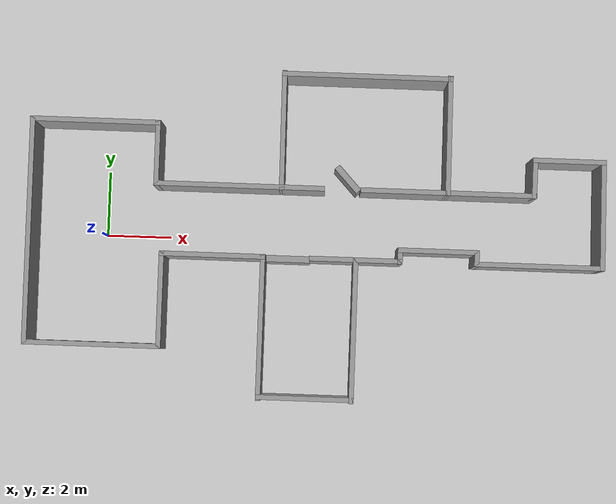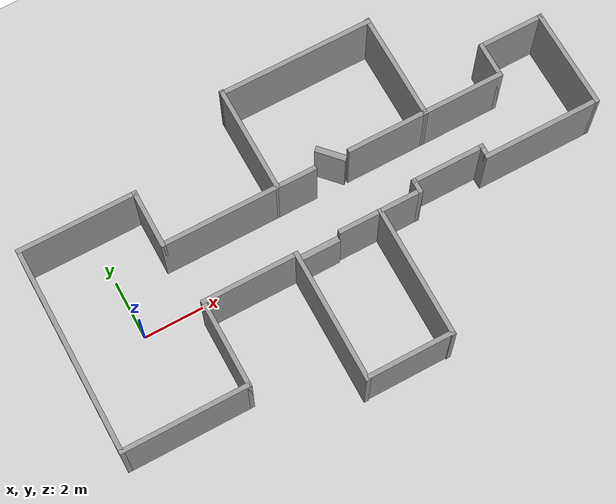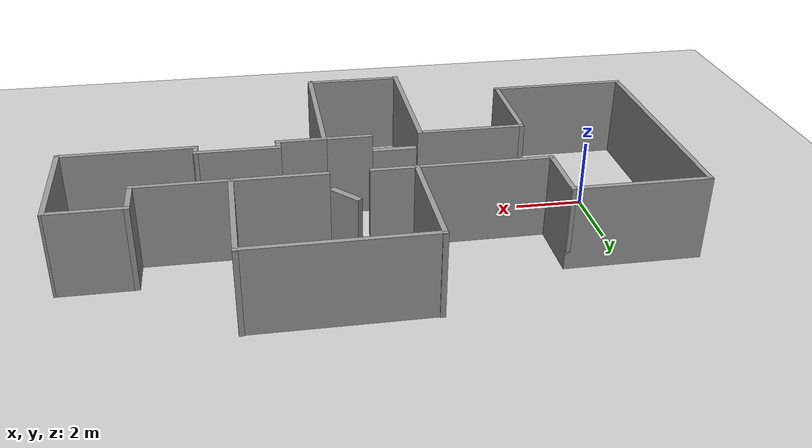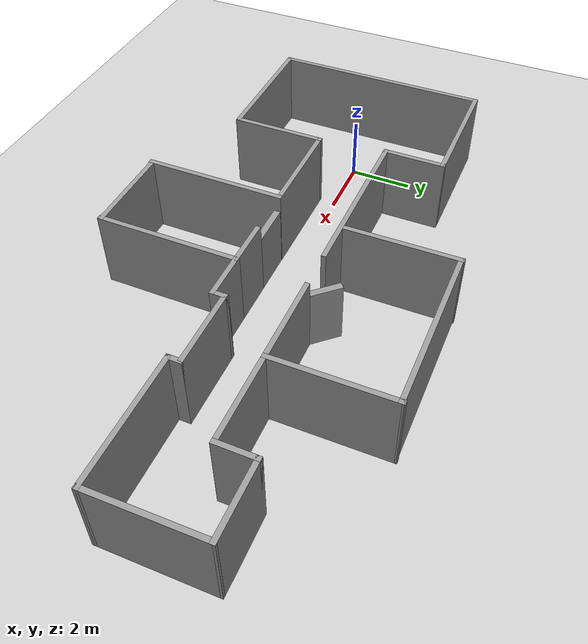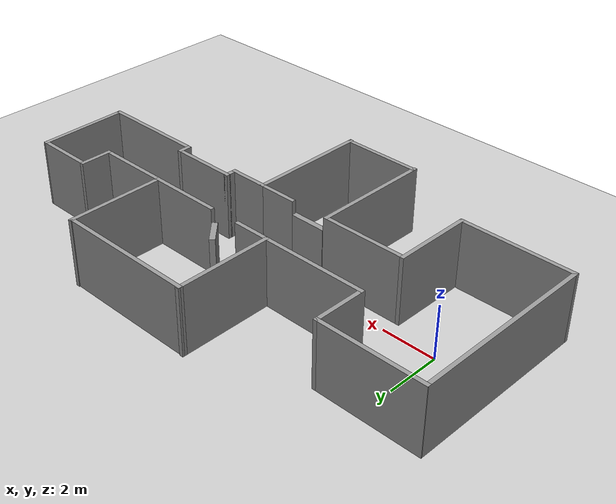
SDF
<sdf version="1.7">
 <world name="default">
  <light name="sun" type="directional">
   <pose>0 0 10 0 -0 0</pose>
   <diffuse>0.8 0.8 0.8 1</diffuse>
   <specular>0.2 0.2 0.2 1</specular>
   <attenuation>
    <range>1000</range>
    <constant>0.9</constant>
    <linear>0.01</linear>
    <quadratic>0.001</quadratic>
   </attenuation>
   <direction>-0.5 0.1 -0.9</direction>
   <spot><inner_angle>0</inner_angle><outer_angle>0</outer_angle><falloff>0</falloff></spot>
  </light>
  <model name="ground_plane">
   <static>1</static>
   <link name="link">
    <collision name="collision">
     <geometry><plane><normal>0 0 1</normal><size>100 100</size></plane></geometry>
     <surface>
      <contact><collide_bitmask>65535</collide_bitmask></contact>
      <friction><ode><mu>100</mu><mu2>50</mu2></ode></friction>
     </surface>
    </collision>
    <visual name="visual">
     <cast_shadows>0</cast_shadows>
     <geometry><plane><normal>0 0 1</normal><size>100 100</size></plane></geometry>
     <material>
      <script><uri>file://media/materials/scripts/gazebo.material</uri><name>Gazebo/Grey</name></script>
     </material>
    </visual>
   </link>
  </model>
  <gravity>0 0 -9.8</gravity>
  <magnetic_field>6e-06 2.3e-05 -4.2e-05</magnetic_field>
  <atmosphere type="adiabatic"/>
  <physics type="ode">
   <max_step_size>0.001</max_step_size>
   <real_time_factor>1</real_time_factor>
   <real_time_update_rate>1000</real_time_update_rate>
  </physics>
  <scene><ambient>0.4 0.4 0.4 1</ambient><background>0.7 0.7 0.7 1</background><shadows>1</shadows></scene>
  <spherical_coordinates>
   <surface_model>EARTH_WGS84</surface_model>
   <latitude_deg>0</latitude_deg>
   <longitude_deg>0</longitude_deg>
   <elevation>0</elevation>
   <heading_deg>0</heading_deg>
  </spherical_coordinates>
  <model name="corridorww">
   <pose>6.57593 0.1021 0 0 -0 0</pose>
   <link name="Door_1">
    <collision name="Door_1_Collision">
     <geometry><box><size>1.0064 0.2 2</size></box></geometry>
     <pose>0 0 1 0 -0 0</pose>
    </collision>
    <visual name="Door_1_Visual">
     <pose>0 0 1 0 -0 0</pose>
     <geometry><box><size>1.0064 0.2 2</size></box></geometry>
     <material>
      <script><uri>file://media/materials/scripts/gazebo.material</uri><name>Gazebo/Grey</name></script>
     </material>
    </visual>
    <pose>0.927988 1.81994 0 0 0 -0.824793</pose>
   </link>
   <link name="Door_2">
    <collision name="Door_2_Collision">
     <geometry><box><size>1.33642 0.2 2</size></box></geometry>
     <pose>0 0 1 0 -0 0</pose>
    </collision>
    <visual name="Door_2_Visual">
     <pose>0 0 1 0 -0 0</pose>
     <geometry><box><size>1.33642 0.2 2</size></box></geometry>
     <material>
      <script><uri>file://media/materials/scripts/gazebo.material</uri><name>Gazebo/Grey</name></script>
     </material>
    </visual>
    <pose>-0.835214 -0.707081 0 0 -0 0</pose>
   </link>
   <link name="Wall_1">
    <collision name="Wall_1_Collision">
     <geometry><box><size>4.25 0.15 2.5</size></box></geometry>
     <pose>0 0 1.25 0 -0 0</pose>
    </collision>
    <visual name="Wall_1_Visual">
     <pose>0 0 1.25 0 -0 0</pose>
     <geometry><box><size>4.25 0.15 2.5</size></box></geometry>
     <material>
      <script><uri>file://media/materials/scripts/gazebo.material</uri><name>Gazebo/Grey</name></script>
      <ambient>1 1 1 1</ambient>
     </material>
     <meta><layer>0</layer></meta>
    </visual>
    <pose>-6.75057 -3.52902 0 0 -0 0</pose>
   </link>
   <link name="Wall_10">
    <collision name="Wall_10_Collision">
     <geometry><box><size>4.46833 0.15 2.5</size></box></geometry>
     <pose>0 0 1.25 0 -0 0</pose>
    </collision>
    <visual name="Wall_10_Visual">
     <pose>0 0 1.25 0 -0 0</pose>
     <geometry><box><size>4.46833 0.15 2.5</size></box></geometry>
     <material>
      <script><uri>file://media/materials/scripts/gazebo.material</uri><name>Gazebo/Grey</name></script>
      <ambient>1 1 1 1</ambient>
     </material>
     <meta><layer>0</layer></meta>
    </visual>
    <pose>-1.60057 -2.83819 0 0 -0 -1.5708</pose>
   </link>
   <link name="Wall_11">
    <collision name="Wall_11_Collision">
     <geometry><box><size>3 0.15 2.5</size></box></geometry>
     <pose>0 0 1.25 0 -0 0</pose>
    </collision>
    <visual name="Wall_11_Visual">
     <pose>0 0 1.25 0 -0 0</pose>
     <geometry><box><size>3 0.15 2.5</size></box></geometry>
     <material>
      <script><uri>file://media/materials/scripts/gazebo.material</uri><name>Gazebo/Grey</name></script>
      <ambient>1 1 1 1</ambient>
     </material>
     <meta><layer>0</layer></meta>
    </visual>
    <pose>-0.175572 -4.96676 0 0 -0 0</pose>
   </link>
   <link name="Wall_12">
    <collision name="Wall_12_Collision">
     <geometry><box><size>4.46833 0.15 2.5</size></box></geometry>
     <pose>0 0 1.25 0 -0 0</pose>
    </collision>
    <visual name="Wall_12_Visual">
     <pose>0 0 1.25 0 -0 0</pose>
     <geometry><box><size>4.46833 0.15 2.5</size></box></geometry>
     <material>
      <script><uri>file://media/materials/scripts/gazebo.material</uri><name>Gazebo/Grey</name></script>
      <ambient>1 1 1 1</ambient>
     </material>
     <meta><layer>0</layer></meta>
    </visual>
    <pose>1.24943 -2.83819 0 0 -0 1.5708</pose>
   </link>
   <link name="Wall_13">
    <collision name="Wall_13_Collision">
     <geometry><box><size>1.5 0.15 2.5</size></box></geometry>
     <pose>0 0 1.25 0 -0 0</pose>
    </collision>
    <visual name="Wall_13_Visual">
     <pose>0 0 1.25 0 -0 0</pose>
     <geometry><box><size>1.5 0.15 2.5</size></box></geometry>
     <material>
      <script><uri>file://media/materials/scripts/gazebo.material</uri><name>Gazebo/Grey</name></script>
      <ambient>1 1 1 1</ambient>
     </material>
     <meta><layer>0</layer></meta>
    </visual>
    <pose>0.574428 -0.679023 0 0 -0 3.14159</pose>
   </link>
   <link name="Wall_16">
    <collision name="Wall_16_Collision">
     <geometry><box><size>1.5 0.15 2.5</size></box></geometry>
     <pose>0 0 1.25 0 -0 0</pose>
    </collision>
    <visual name="Wall_16_Visual">
     <pose>0 0 1.25 0 -0 0</pose>
     <geometry><box><size>1.5 0.15 2.5</size></box></geometry>
     <material>
      <script><uri>file://media/materials/scripts/gazebo.material</uri><name>Gazebo/Grey</name></script>
      <ambient>1 1 1 1</ambient>
     </material>
     <meta><layer>0</layer></meta>
    </visual>
    <pose>1.92443 -0.679023 0 0 -0 0</pose>
   </link>
   <link name="Wall_17">
    <collision name="Wall_17_Collision">
     <geometry><box><size>0.5 0.15 2.5</size></box></geometry>
     <pose>0 0 1.25 0 -0 0</pose>
    </collision>
    <visual name="Wall_17_Visual">
     <pose>0 0 1.25 0 -0 0</pose>
     <geometry><box><size>0.5 0.15 2.5</size></box></geometry>
     <material>
      <script><uri>file://media/materials/scripts/gazebo.material</uri><name>Gazebo/Grey</name></script>
      <ambient>1 1 1 1</ambient>
     </material>
     <meta><layer>0</layer></meta>
    </visual>
    <pose>2.59943 -0.504023 0 0 -0 1.5708</pose>
   </link>
   <link name="Wall_18">
    <collision name="Wall_18_Collision">
     <geometry><box><size>2.5 0.15 2.5</size></box></geometry>
     <pose>0 0 1.25 0 -0 0</pose>
    </collision>
    <visual name="Wall_18_Visual">
     <pose>0 0 1.25 0 -0 0</pose>
     <geometry><box><size>2.5 0.15 2.5</size></box></geometry>
     <material>
      <script><uri>file://media/materials/scripts/gazebo.material</uri><name>Gazebo/Grey</name></script>
      <ambient>1 1 1 1</ambient>
     </material>
     <meta><layer>0</layer></meta>
    </visual>
    <pose>3.77443 -0.329023 0 0 -0 0</pose>
   </link>
   <link name="Wall_21">
    <collision name="Wall_21_Collision">
     <geometry><box><size>0.5 0.15 2.5</size></box></geometry>
     <pose>0 0 1.25 0 -0 0</pose>
    </collision>
    <visual name="Wall_21_Visual">
     <pose>0 0 1.25 0 -0 0</pose>
     <geometry><box><size>0.5 0.15 2.5</size></box></geometry>
     <material>
      <script><uri>file://media/materials/scripts/gazebo.material</uri><name>Gazebo/Grey</name></script>
      <ambient>1 1 1 1</ambient>
     </material>
     <meta><layer>0</layer></meta>
    </visual>
    <pose>4.94943 -0.504023 0 0 -0 -1.5708</pose>
   </link>
   <link name="Wall_22">
    <collision name="Wall_22_Collision">
     <geometry><box><size>4 0.15 2.5</size></box></geometry>
     <pose>0 0 1.25 0 -0 0</pose>
    </collision>
    <visual name="Wall_22_Visual">
     <pose>0 0 1.25 0 -0 0</pose>
     <geometry><box><size>4 0.15 2.5</size></box></geometry>
     <material>
      <script><uri>file://media/materials/scripts/gazebo.material</uri><name>Gazebo/Grey</name></script>
      <ambient>1 1 1 1</ambient>
     </material>
     <meta><layer>0</layer></meta>
    </visual>
    <pose>6.87443 -0.679023 0 0 -0 0</pose>
   </link>
   <link name="Wall_25">
    <collision name="Wall_25_Collision">
     <geometry><box><size>4 0.15 2.5</size></box></geometry>
     <pose>0 0 1.25 0 -0 0</pose>
    </collision>
    <visual name="Wall_25_Visual">
     <pose>0 0 1.25 0 -0 0</pose>
     <geometry><box><size>4 0.15 2.5</size></box></geometry>
     <material>
      <script><uri>file://media/materials/scripts/gazebo.material</uri><name>Gazebo/Grey</name></script>
      <ambient>1 1 1 1</ambient>
     </material>
     <meta><layer>0</layer></meta>
    </visual>
    <pose>-6.87557 3.32098 0 0 -0 0</pose>
   </link>
   <link name="Wall_27">
    <collision name="Wall_27_Collision">
     <geometry><box><size>2 0.15 2.5</size></box></geometry>
     <pose>0 0 1.25 0 -0 0</pose>
    </collision>
    <visual name="Wall_27_Visual">
     <pose>0 0 1.25 0 -0 0</pose>
     <geometry><box><size>2 0.15 2.5</size></box></geometry>
     <material>
      <script><uri>file://media/materials/scripts/gazebo.material</uri><name>Gazebo/Grey</name></script>
      <ambient>1 1 1 1</ambient>
     </material>
     <meta><layer>0</layer></meta>
    </visual>
    <pose>-4.95057 2.39598 0 0 -0 -1.5708</pose>
   </link>
   <link name="Wall_29">
    <collision name="Wall_29_Collision">
     <geometry><box><size>1.25 0.15 2.5</size></box></geometry>
     <pose>0 0 1.25 0 -0 0</pose>
    </collision>
    <visual name="Wall_29_Visual">
     <pose>0 0 1.25 0 -0 0</pose>
     <geometry><box><size>1.25 0.15 2.5</size></box></geometry>
     <material>
      <script><uri>file://media/materials/scripts/gazebo.material</uri><name>Gazebo/Grey</name></script>
      <ambient>1 1 1 1</ambient>
     </material>
     <meta><layer>0</layer></meta>
    </visual>
    <pose>6.64943 2.02098 0 0 -0 1.5708</pose>
   </link>
   <link name="Wall_30">
    <collision name="Wall_30_Collision">
     <geometry><box><size>2.25 0.15 2.5</size></box></geometry>
     <pose>0 0 1.25 0 -0 0</pose>
    </collision>
    <visual name="Wall_30_Visual">
     <pose>0 0 1.25 0 -0 0</pose>
     <geometry><box><size>2.25 0.15 2.5</size></box></geometry>
     <material>
      <script><uri>file://media/materials/scripts/gazebo.material</uri><name>Gazebo/Grey</name></script>
      <ambient>1 1 1 1</ambient>
     </material>
     <meta><layer>0</layer></meta>
    </visual>
    <pose>7.69943 2.57098 0 0 -0 0</pose>
   </link>
   <link name="Wall_32">
    <collision name="Wall_32_Collision">
     <geometry><box><size>3.40038 0.15 2.5</size></box></geometry>
     <pose>0 0 1.25 0 -0 0</pose>
    </collision>
    <visual name="Wall_32_Visual">
     <pose>0 0 1.25 0 -0 0</pose>
     <geometry><box><size>3.40038 0.15 2.5</size></box></geometry>
     <material>
      <script><uri>file://media/materials/scripts/gazebo.material</uri><name>Gazebo/Grey</name></script>
      <ambient>1 1 1 1</ambient>
     </material>
     <meta><layer>0</layer></meta>
    </visual>
    <pose>8.77443 0.945977 0 0 -0 -1.55541</pose>
   </link>
   <link name="Wall_34">
    <collision name="Wall_34_Collision">
     <geometry><box><size>5.25 0.15 2.5</size></box></geometry>
     <pose>0 0 1.25 0 -0 0</pose>
    </collision>
    <visual name="Wall_34_Visual">
     <pose>0 0 1.25 0 -0 0</pose>
     <geometry><box><size>5.25 0.15 2.5</size></box></geometry>
     <material>
      <script><uri>file://media/materials/scripts/gazebo.material</uri><name>Gazebo/Grey</name></script>
      <ambient>1 1 1 1</ambient>
     </material>
     <meta><layer>0</layer></meta>
    </visual>
    <pose>-2.40057 1.47098 0 0 -0 0</pose>
   </link>
   <link name="Wall_36">
    <collision name="Wall_36_Collision">
     <geometry><box><size>5.25 0.15 2.5</size></box></geometry>
     <pose>0 0 1.25 0 -0 0</pose>
    </collision>
    <visual name="Wall_36_Visual">
     <pose>0 0 1.25 0 -0 0</pose>
     <geometry><box><size>5.25 0.15 2.5</size></box></geometry>
     <material>
      <script><uri>file://media/materials/scripts/gazebo.material</uri><name>Gazebo/Grey</name></script>
      <ambient>1 1 1 1</ambient>
     </material>
     <meta><layer>0</layer></meta>
    </visual>
    <pose>1.42283 4.97019 0 0 -0 0</pose>
   </link>
   <link name="Wall_38">
    <collision name="Wall_38_Collision">
     <geometry><box><size>3.67591 0.15 2.5</size></box></geometry>
     <pose>0 0 1.25 0 -0 0</pose>
    </collision>
    <visual name="Wall_38_Visual">
     <pose>0 0 1.25 0 -0 0</pose>
     <geometry><box><size>3.67591 0.15 2.5</size></box></geometry>
     <material>
      <script><uri>file://media/materials/scripts/gazebo.material</uri><name>Gazebo/Grey</name></script>
      <ambient>1 1 1 1</ambient>
     </material>
     <meta><layer>0</layer></meta>
    </visual>
    <pose>3.98613 3.23388 0 0 -0 -1.56325</pose>
   </link>
   <link name="Wall_4">
    <collision name="Wall_4_Collision">
     <geometry><box><size>6.96941 0.15 2.5</size></box></geometry>
     <pose>0 0 1.25 0 -0 0</pose>
    </collision>
    <visual name="Wall_4_Visual">
     <pose>0 0 1.25 0 -0 0</pose>
     <geometry><box><size>6.96941 0.15 2.5</size></box></geometry>
     <material>
      <script><uri>file://media/materials/scripts/gazebo.material</uri><name>Gazebo/Grey</name></script>
      <ambient>1 1 1 1</ambient>
     </material>
     <meta><layer>0</layer></meta>
    </visual>
    <pose>-8.80057 -0.119318 0 0 -0 1.5708</pose>
   </link>
   <link name="Wall_40">
    <collision name="Wall_40_Collision">
     <geometry><box><size>2.8 0.15 2.5</size></box></geometry>
     <pose>0 0 1.25 0 -0 0</pose>
    </collision>
    <visual name="Wall_40_Visual">
     <pose>0 0 1.25 0 -0 0</pose>
     <geometry><box><size>2.8 0.15 2.5</size></box></geometry>
     <material>
      <script><uri>file://media/materials/scripts/gazebo.material</uri><name>Gazebo/Grey</name></script>
      <ambient>1 1 1 1</ambient>
     </material>
     <meta><layer>0</layer></meta>
    </visual>
    <pose>5.32443 1.47098 0 0 -0 0</pose>
   </link>
   <link name="Wall_42">
    <collision name="Wall_42_Collision">
     <geometry><box><size>2.75 0.15 2.5</size></box></geometry>
     <pose>0 0 1.25 0 -0 0</pose>
    </collision>
    <visual name="Wall_42_Visual">
     <pose>0 0 1.25 0 -0 0</pose>
     <geometry><box><size>2.75 0.15 2.5</size></box></geometry>
     <material>
      <script><uri>file://media/materials/scripts/gazebo.material</uri><name>Gazebo/Grey</name></script>
      <ambient>1 1 1 1</ambient>
     </material>
     <meta><layer>0</layer></meta>
    </visual>
    <pose>2.69943 1.47098 0 0 -0 3.14159</pose>
   </link>
   <link name="Wall_44">
    <collision name="Wall_44_Collision">
     <geometry><box><size>3.67591 0.15 2.5</size></box></geometry>
     <pose>0 0 1.25 0 -0 0</pose>
    </collision>
    <visual name="Wall_44_Visual">
     <pose>0 0 1.25 0 -0 0</pose>
     <geometry><box><size>3.67591 0.15 2.5</size></box></geometry>
     <material>
      <script><uri>file://media/materials/scripts/gazebo.material</uri><name>Gazebo/Grey</name></script>
      <ambient>1 1 1 1</ambient>
     </material>
     <meta><layer>0</layer></meta>
    </visual>
    <pose>-1.11387 3.23388 0 0 -0 -1.56325</pose>
   </link>
   <link name="Wall_6">
    <collision name="Wall_6_Collision">
     <geometry><box><size>3 0.15 2.5</size></box></geometry>
     <pose>0 0 1.25 0 -0 0</pose>
    </collision>
    <visual name="Wall_6_Visual">
     <pose>0 0 1.25 0 -0 0</pose>
     <geometry><box><size>3 0.15 2.5</size></box></geometry>
     <material>
      <script><uri>file://media/materials/scripts/gazebo.material</uri><name>Gazebo/Grey</name></script>
      <ambient>1 1 1 1</ambient>
     </material>
     <meta><layer>0</layer></meta>
    </visual>
    <pose>-4.70057 -2.10402 0 0 -0 1.5708</pose>
   </link>
   <link name="Wall_7">
    <collision name="Wall_7_Collision">
     <geometry><box><size>3.25 0.15 2.5</size></box></geometry>
     <pose>0 0 1.25 0 -0 0</pose>
    </collision>
    <visual name="Wall_7_Visual">
     <pose>0 0 1.25 0 -0 0</pose>
     <geometry><box><size>3.25 0.15 2.5</size></box></geometry>
     <material>
      <script><uri>file://media/materials/scripts/gazebo.material</uri><name>Gazebo/Grey</name></script>
      <ambient>1 1 1 1</ambient>
     </material>
     <meta><layer>0</layer></meta>
    </visual>
    <pose>-3.15057 -0.679023 0 0 -0 0</pose>
   </link>
   <static>1</static>
  </model>
 </world>
</sdf>
